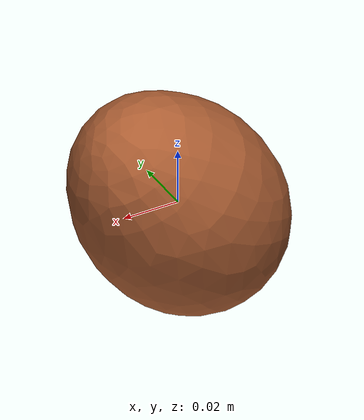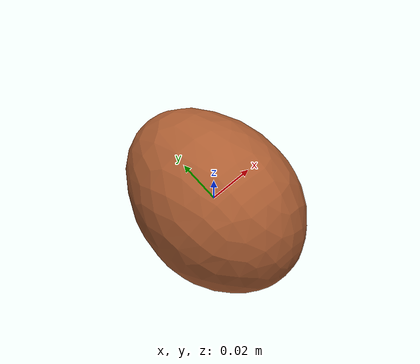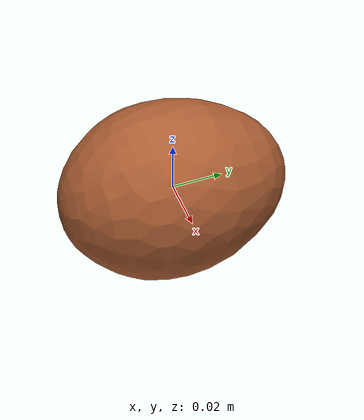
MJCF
<mujoco model="Egg_3">
  <compiler autolimits="true" boundmass="0.01" angle="radian"/>
  <default>
    <default class="/">
      <default class="__VISUAL_MJT__">
        <geom contype="0" conaffinity="0" group="0"/>
      </default>
      <default class="__STRUCTURAL_MJT__">
        <geom contype="8" conaffinity="15" group="4" friction="0.90000000000000002 0.90000000000000002 0.001" solref="0.025000000000000001 1" solimp="0.998 0.998 0.001"/>
      </default>
      <default class="__DYNAMIC_MJT__">
        <geom contype="1" conaffinity="15" group="4" friction="0.90000000000000002 0.90000000000000002 0.001" solref="0.025000000000000001 1" solimp="0.998 0.998 0.001"/>
      </default>
    </default>
  </default>
  <asset>
    <material name="material_Egg3_Mat" class="/" specular="0.5" shininess="0.5" rgba="0.66911770000000004 0.3643962 0.19679930000000001 1"/>
    <mesh name="Egg_3_egg_3" class="/" file="Egg_3_egg_3/Egg_3_egg_3.obj" scale="1 1 1"/>
  </asset>
  <worldbody>
    <body name="Egg_3">
      <joint name="Egg_3_free" class="/" type="free" pos="0 0 0" axis="0 0 1" stiffness="0" range="0 0" armature="0" damping="0.10000000000000001" frictionloss="0"/>
      <body name="Egg_3_egg_3" pos="-0 0 -0.00012" quat="1 0 0 0">
        <geom name="Egg_3_egg_3" class="__VISUAL_MJT__" type="mesh" material="material_Egg3_Mat" shellinertia="true" mesh="Egg_3_egg_3"/>
        <geom name="Egg_3_PrimitiveCollider_0" class="__DYNAMIC_MJT__" type="capsule" size="0.031080685555934906 0.012451786547899246" rgba="0 1 0 1" pos="-0 0 0" quat="0.70710678118654757 0.70710678118654746 0 0"/>
      </body>
    </body>
  </worldbody>
</mujoco>
